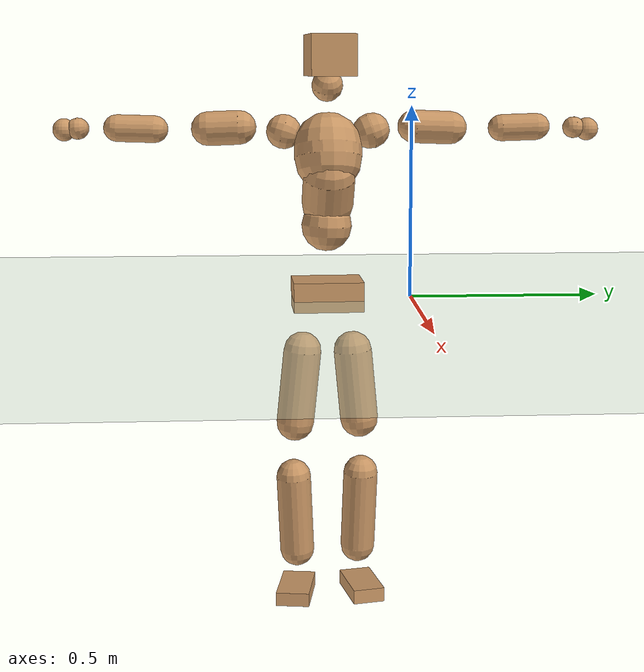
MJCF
<mujoco model="humanoid">
  <compiler coordinate="local" angle="radian"/>
  <default>
    <joint damping="0.0" armature="0.01" stiffness="0.0" limited="true"/>
    <geom conaffinity="1" condim="3" contype="7" margin="0.001" rgba="0.8 0.6 .4 1"/>
  </default>
  <asset>
    <texture type="skybox" builtin="gradient" rgb1=".4 .5 .6" rgb2="0 0 0" width="100" height="100"/>
    <texture builtin="flat" height="1278" mark="cross" markrgb="1 1 1" name="texgeom" random="0.01" rgb1="0.8 0.6 0.4" rgb2="0.8 0.6 0.4" type="cube" width="127"/>
    <texture builtin="checker" height="100" name="texplane" rgb1="0 0 0" rgb2="0.8 0.8 0.8" type="2d" width="100"/>
    <material name="MatPlane" reflectance="0.5" shininess="1" specular="1" texrepeat="60 60" texture="texplane"/>
    <material name="geom" texture="texgeom" texuniform="true"/>
  </asset>
  <worldbody>
    <light cutoff="100" diffuse="1 1 1" dir="-0 0 -1.3" directional="true" exponent="1" pos="0 0 1.3" specular=".1 .1 .1"/>
    <geom conaffinity="1" condim="3" name="floor" pos="0 0 0" rgba="0.8 0.9 0.8 1" size="100 100 .2" type="plane" material="MatPlane"/>
    <body name="Pelvis" pos="-0.0035 -0.2206 0.0196">
      <freejoint name="Pelvis"/>
      <geom type="box" contype="1" conaffinity="1" density="5359.374567" pos="-0.0055 -0.0002 -0.0120" size="0.0699 0.0923 0.0391" quat="0.9999 0.0000 0.0000 0.0166" name="Pelvis"/>
      <body name="L_Hip" pos="-0.0096 0.0608 -0.0865">
        <joint name="L_Hip_x" type="hinge" pos="0 0 0" axis="1 0 0" stiffness="1600" damping="160" armature="0.02" range="-180.0000 180.0000"/>
        <joint name="L_Hip_y" type="hinge" pos="0 0 0" axis="0 1 0" stiffness="1600" damping="160" armature="0.02" range="-180.0000 180.0000"/>
        <joint name="L_Hip_z" type="hinge" pos="0 0 0" axis="0 0 1" stiffness="1600" damping="160" armature="0.02" range="-180.0000 180.0000"/>
        <geom type="capsule" contype="1" conaffinity="1" density="2040.816327" size="0.0512" fromto="-0.0005 0.0075 -0.0809 -0.0018 0.0250 -0.2705" name="L_Hip"/>
        <body name="L_Knee" pos="-0.0024 0.0325 -0.3513">
          <joint name="L_Knee_x" type="hinge" pos="0 0 0" axis="1 0 0" stiffness="1600" damping="160" armature="0.02" range="-180.0000 180.0000"/>
          <joint name="L_Knee_y" type="hinge" pos="0 0 0" axis="0 1 0" stiffness="1600" damping="160" armature="0.02" range="-180.0000 180.0000"/>
          <joint name="L_Knee_z" type="hinge" pos="0 0 0" axis="0 0 1" stiffness="1600" damping="160" armature="0.02" range="-180.0000 180.0000"/>
          <geom type="capsule" contype="1" conaffinity="1" density="1234.567901" size="0.0466" fromto="-0.0075 -0.0024 -0.0762 -0.0288 -0.0092 -0.2941" name="L_Knee"/>
          <body name="L_Ankle" pos="-0.0363 -0.0116 -0.3703">
            <joint name="L_Ankle_x" type="hinge" pos="0 0 0" axis="1 0 0" stiffness="1600" damping="160" armature="0.02" range="-180.0000 180.0000"/>
            <joint name="L_Ankle_y" type="hinge" pos="0 0 0" axis="0 1 0" stiffness="1600" damping="160" armature="0.02" range="-180.0000 180.0000"/>
            <joint name="L_Ankle_z" type="hinge" pos="0 0 0" axis="0 0 1" stiffness="1600" damping="160" armature="0.02" range="-180.0000 180.0000"/>
            <geom type="box" contype="1" conaffinity="1" density="999.999947" pos="0.0552 0.0111 -0.0269" size="0.0771 0.043 0.0193" quat="0.9951 0.0000 0.0000 0.0992" name="L_Ankle"/>
            <body name="L_Toe" pos="0.1103 0.0222 -0.0537">
              <joint name="L_Toe_x" type="hinge" pos="0 0 0" axis="1 0 0" stiffness="1000" damping="100" armature="0.02" range="-180.0000 180.0000"/>
              <joint name="L_Toe_y" type="hinge" pos="0 0 0" axis="0 1 0" stiffness="1000" damping="100" armature="0.02" range="-180.0000 180.0000"/>
              <joint name="L_Toe_z" type="hinge" pos="0 0 0" axis="0 0 1" stiffness="1000" damping="100" armature="0.02" range="-180.0000 180.0000"/>
              <geom type="box" contype="1" conaffinity="1" density="8142141.868064" pos="0.0000 0.0000 0.0275" size="0.0009 0.0022 0.001" quat="0.9944 0.0000 0.0000 0.1060" name="L_Toe"/>
            </body>
          </body>
        </body>
      </body>
      <body name="R_Hip" pos="-0.0059 -0.0586 -0.0861">
        <joint name="R_Hip_x" type="hinge" pos="0 0 0" axis="1 0 0" stiffness="1600" damping="160" armature="0.02" range="-180.0000 180.0000"/>
        <joint name="R_Hip_y" type="hinge" pos="0 0 0" axis="0 1 0" stiffness="1600" damping="160" armature="0.02" range="-180.0000 180.0000"/>
        <joint name="R_Hip_z" type="hinge" pos="0 0 0" axis="0 0 1" stiffness="1600" damping="160" armature="0.02" range="-180.0000 180.0000"/>
        <geom type="capsule" contype="1" conaffinity="1" density="2040.816327" size="0.0505" fromto="-0.0010 -0.0084 -0.0800 -0.0037 -0.0292 -0.2791" name="R_Hip"/>
        <body name="R_Knee" pos="-0.0047 -0.0375 -0.3591">
          <joint name="R_Knee_x" type="hinge" pos="0 0 0" axis="1 0 0" stiffness="1600" damping="160" armature="0.02" range="-180.0000 180.0000"/>
          <joint name="R_Knee_y" type="hinge" pos="0 0 0" axis="0 1 0" stiffness="1600" damping="160" armature="0.02" range="-180.0000 180.0000"/>
          <joint name="R_Knee_z" type="hinge" pos="0 0 0" axis="0 0 1" stiffness="1600" damping="160" armature="0.02" range="-180.0000 180.0000"/>
          <geom type="capsule" contype="1" conaffinity="1" density="1234.567901" size="0.047" fromto="-0.0071 0.0030 -0.0766 -0.0271 0.0116 -0.2935" name="R_Knee"/>
          <body name="R_Ankle" pos="-0.0341 0.0146 -0.3702">
            <joint name="R_Ankle_x" type="hinge" pos="0 0 0" axis="1 0 0" stiffness="1600" damping="160" armature="0.02" range="-180.0000 180.0000"/>
            <joint name="R_Ankle_y" type="hinge" pos="0 0 0" axis="0 1 0" stiffness="1600" damping="160" armature="0.02" range="-180.0000 180.0000"/>
            <joint name="R_Ankle_z" type="hinge" pos="0 0 0" axis="0 0 1" stiffness="1600" damping="160" armature="0.02" range="-180.0000 180.0000"/>
            <geom type="box" contype="1" conaffinity="1" density="999.999945" pos="0.0567 -0.0083 -0.0220" size="0.0792 0.0448 0.0184" quat="0.9974 0.0000 0.0000 -0.0722" name="R_Ankle"/>
            <body name="R_Toe" pos="0.1135 -0.0165 -0.044">
              <joint name="R_Toe_x" type="hinge" pos="0 0 0" axis="1 0 0" stiffness="1000" damping="100" armature="0.02" range="-180.0000 180.0000"/>
              <joint name="R_Toe_y" type="hinge" pos="0 0 0" axis="0 1 0" stiffness="1000" damping="100" armature="0.02" range="-180.0000 180.0000"/>
              <joint name="R_Toe_z" type="hinge" pos="0 0 0" axis="0 0 1" stiffness="1000" damping="100" armature="0.02" range="-180.0000 180.0000"/>
              <geom type="box" contype="1" conaffinity="1" density="8272414.506785" pos="0.0000 0.0000 0.0251" size="0.0008 0.0022 0.0011" quat="0.9980 0.0000 0.0000 -0.0624" name="R_Toe"/>
            </body>
          </body>
        </body>
      </body>
      <body name="Torso" pos="-0.0179 -0.0033 0.1003">
        <joint name="Torso_x" type="hinge" pos="0 0 0" axis="1 0 0" stiffness="2000" damping="200" armature="0.02" range="-180.0000 180.0000"/>
        <joint name="Torso_y" type="hinge" pos="0 0 0" axis="0 1 0" stiffness="2000" damping="200" armature="0.02" range="-180.0000 180.0000"/>
        <joint name="Torso_z" type="hinge" pos="0 0 0" axis="0 0 1" stiffness="2000" damping="200" armature="0.02" range="-180.0000 180.0000"/>
        <geom type="capsule" contype="1" conaffinity="1" density="2040.816327" size="0.0664" fromto="0.0004 0.0028 0.0676 0.0004 0.0029 0.0696" name="Torso"/>
        <body name="Spine" pos="0.0008 0.0058 0.1372">
          <joint name="Spine_x" type="hinge" pos="0 0 0" axis="1 0 0" stiffness="2000" damping="200" armature="0.02" range="-180.0000 180.0000"/>
          <joint name="Spine_y" type="hinge" pos="0 0 0" axis="0 1 0" stiffness="2000" damping="200" armature="0.02" range="-180.0000 180.0000"/>
          <joint name="Spine_z" type="hinge" pos="0 0 0" axis="0 0 1" stiffness="2000" damping="200" armature="0.02" range="-180.0000 180.0000"/>
          <geom type="capsule" contype="1" conaffinity="1" density="2040.816327" size="0.0681" fromto="0.0293 0.0026 0.0614 -0.0045 -0.0004 -0.0094" name="Spine"/>
          <body name="Chest" pos="0.0249 0.0022 0.0521">
            <joint name="Chest_x" type="hinge" pos="0 0 0" axis="1 0 0" stiffness="2000" damping="200" armature="0.02" range="-180.0000 180.0000"/>
            <joint name="Chest_y" type="hinge" pos="0 0 0" axis="0 1 0" stiffness="2000" damping="200" armature="0.02" range="-180.0000 180.0000"/>
            <joint name="Chest_z" type="hinge" pos="0 0 0" axis="0 0 1" stiffness="2000" damping="200" armature="0.02" range="-180.0000 180.0000"/>
            <geom type="capsule" contype="1" conaffinity="1" density="2040.816327" size="0.0894" fromto="-0.0230 -0.0015 0.0864 -0.0152 -0.0010 0.0569" name="Chest"/>
            <body name="Neck" pos="-0.0394 -0.0052 0.2062">
              <joint name="Neck_x" type="hinge" pos="0 0 0" axis="1 0 0" stiffness="1000" damping="100" armature="0.02" range="-180.0000 180.0000"/>
              <joint name="Neck_y" type="hinge" pos="0 0 0" axis="0 1 0" stiffness="1000" damping="100" armature="0.02" range="-180.0000 180.0000"/>
              <joint name="Neck_z" type="hinge" pos="0 0 0" axis="0 0 1" stiffness="1000" damping="100" armature="0.02" range="-180.0000 180.0000"/>
              <geom type="capsule" contype="1" conaffinity="1" density="1000" size="0.0405" fromto="0.0280 0.0019 0.0365 0.0292 0.0020 0.0380" name="Neck"/>
              <body name="Head" pos="0.0571 0.0039 0.0745">
                <joint name="Head_x" type="hinge" pos="0 0 0" axis="1 0 0" stiffness="1000" damping="100" armature="0.02" range="-180.0000 180.0000"/>
                <joint name="Head_y" type="hinge" pos="0 0 0" axis="0 1 0" stiffness="1000" damping="100" armature="0.02" range="-180.0000 180.0000"/>
                <joint name="Head_z" type="hinge" pos="0 0 0" axis="0 0 1" stiffness="1000" damping="100" armature="0.02" range="-180.0000 180.0000"/>
                <geom type="box" contype="1" conaffinity="1" density="2249.999776" pos="0.0296 0.0029 0.0382" size="0.0746 0.0578 0.0518" quat="0.9988 0.0000 0.0000 0.0496" name="Head"/>
              </body>
            </body>
            <body name="L_Thorax" pos="-0.0358 0.0717 0.113">
              <joint name="L_Thorax_x" type="hinge" pos="0 0 0" axis="1 0 0" stiffness="1000" damping="100" armature="0.02" range="-180.0000 180.0000"/>
              <joint name="L_Thorax_y" type="hinge" pos="0 0 0" axis="0 1 0" stiffness="1000" damping="100" armature="0.02" range="-180.0000 180.0000"/>
              <joint name="L_Thorax_z" type="hinge" pos="0 0 0" axis="0 0 1" stiffness="1000" damping="100" armature="0.02" range="-180.0000 180.0000"/>
              <geom type="capsule" contype="1" conaffinity="1" density="1000" size="0.0461" fromto="-0.0037 0.0437 0.0143 -0.0033 0.0388 0.0127" name="L_Thorax"/>
              <body name="L_Shoulder" pos="-0.0069 0.0825 0.027">
                <joint name="L_Shoulder_x" type="hinge" pos="0 0 0" axis="1 0 0" stiffness="1000" damping="100" armature="0.02" range="-720.0000 720.0000"/>
                <joint name="L_Shoulder_y" type="hinge" pos="0 0 0" axis="0 1 0" stiffness="1000" damping="100" armature="0.02" range="-720.0000 720.0000"/>
                <joint name="L_Shoulder_z" type="hinge" pos="0 0 0" axis="0 0 1" stiffness="1000" damping="100" armature="0.02" range="-720.0000 720.0000"/>
                <geom type="capsule" contype="1" conaffinity="1" density="1000" size="0.0432" fromto="-0.0077 0.0727 -0.0031 -0.0180 0.1704 -0.0072" name="L_Shoulder"/>
                <body name="L_Elbow" pos="-0.0257 0.2431 -0.0102">
                  <joint name="L_Elbow_x" type="hinge" pos="0 0 0" axis="1 0 0" stiffness="1000" damping="100" armature="0.02" range="-720.0000 720.0000"/>
                  <joint name="L_Elbow_y" type="hinge" pos="0 0 0" axis="0 1 0" stiffness="1000" damping="100" armature="0.02" range="-720.0000 720.0000"/>
                  <joint name="L_Elbow_z" type="hinge" pos="0 0 0" axis="0 0 1" stiffness="1000" damping="100" armature="0.02" range="-720.0000 720.0000"/>
                  <geom type="capsule" contype="1" conaffinity="1" density="1000" size="0.0351" fromto="-0.0007 0.0650 0.0020 -0.0016 0.1594 0.0050" name="L_Elbow"/>
                  <body name="L_Wrist" pos="-0.0023 0.2244 0.007">
                    <joint name="L_Wrist_x" type="hinge" pos="0 0 0" axis="1 0 0" stiffness="600" damping="60" armature="0.02" range="-180.0000 180.0000"/>
                    <joint name="L_Wrist_y" type="hinge" pos="0 0 0" axis="0 1 0" stiffness="600" damping="60" armature="0.02" range="-180.0000 180.0000"/>
                    <joint name="L_Wrist_z" type="hinge" pos="0 0 0" axis="0 0 1" stiffness="600" damping="60" armature="0.02" range="-180.0000 180.0000"/>
                    <geom type="capsule" contype="1" conaffinity="1" density="1000" size="0.0281" fromto="-0.0060 0.0363 -0.0044 -0.0064 0.0383 -0.0046" name="L_Wrist"/>
                    <body name="L_Hand" pos="-0.0124 0.0746 -0.009">
                      <joint name="L_Hand_x" type="hinge" pos="0 0 0" axis="1 0 0" stiffness="600" damping="60" armature="0.02" range="-180.0000 180.0000"/>
                      <joint name="L_Hand_y" type="hinge" pos="0 0 0" axis="0 1 0" stiffness="600" damping="60" armature="0.02" range="-180.0000 180.0000"/>
                      <joint name="L_Hand_z" type="hinge" pos="0 0 0" axis="0 0 1" stiffness="600" damping="60" armature="0.02" range="-180.0000 180.0000"/>
                      <geom type="sphere" contype="1" conaffinity="1" density="1000" size="0.0302" pos="0.0000 0.0000 0.0000" name="L_Hand"/>
                    </body>
                  </body>
                </body>
              </body>
            </body>
            <body name="R_Thorax" pos="-0.0394 -0.0741 0.1108">
              <joint name="R_Thorax_x" type="hinge" pos="0 0 0" axis="1 0 0" stiffness="1000" damping="100" armature="0.02" range="-180.0000 180.0000"/>
              <joint name="R_Thorax_y" type="hinge" pos="0 0 0" axis="0 1 0" stiffness="1000" damping="100" armature="0.02" range="-180.0000 180.0000"/>
              <joint name="R_Thorax_z" type="hinge" pos="0 0 0" axis="0 0 1" stiffness="1000" damping="100" armature="0.02" range="-180.0000 180.0000"/>
              <geom type="capsule" contype="1" conaffinity="1" density="1000" size="0.0449" fromto="-0.0047 -0.0409 0.0135 -0.0049 -0.0428 0.0141" name="R_Thorax"/>
              <body name="R_Shoulder" pos="-0.0096 -0.0837 0.0276">
                <joint name="R_Shoulder_x" type="hinge" pos="0 0 0" axis="1 0 0" stiffness="1000" damping="100" armature="0.02" range="-720.0000 720.0000"/>
                <joint name="R_Shoulder_y" type="hinge" pos="0 0 0" axis="0 1 0" stiffness="1000" damping="100" armature="0.02" range="-720.0000 720.0000"/>
                <joint name="R_Shoulder_z" type="hinge" pos="0 0 0" axis="0 0 1" stiffness="1000" damping="100" armature="0.02" range="-720.0000 720.0000"/>
                <geom type="capsule" contype="1" conaffinity="1" density="1000" size="0.0444" fromto="-0.0058 -0.0741 -0.0032 -0.0121 -0.1557 -0.0066" name="R_Shoulder"/>
                <body name="R_Elbow" pos="-0.0178 -0.2299 -0.0098">
                  <joint name="R_Elbow_x" type="hinge" pos="0 0 0" axis="1 0 0" stiffness="1000" damping="100" armature="0.02" range="-720.0000 720.0000"/>
                  <joint name="R_Elbow_y" type="hinge" pos="0 0 0" axis="0 1 0" stiffness="1000" damping="100" armature="0.02" range="-720.0000 720.0000"/>
                  <joint name="R_Elbow_z" type="hinge" pos="0 0 0" axis="0 0 1" stiffness="1000" damping="100" armature="0.02" range="-720.0000 720.0000"/>
                  <geom type="capsule" contype="1" conaffinity="1" density="1000" size="0.0353" fromto="-0.0017 -0.0653 0.0019 -0.0042 -0.1636 0.0048" name="R_Elbow"/>
                  <body name="R_Wrist" pos="-0.0059 -0.2288 0.0067">
                    <joint name="R_Wrist_x" type="hinge" pos="0 0 0" axis="1 0 0" stiffness="600" damping="60" armature="0.02" range="-180.0000 180.0000"/>
                    <joint name="R_Wrist_y" type="hinge" pos="0 0 0" axis="0 1 0" stiffness="600" damping="60" armature="0.02" range="-180.0000 180.0000"/>
                    <joint name="R_Wrist_z" type="hinge" pos="0 0 0" axis="0 0 1" stiffness="600" damping="60" armature="0.02" range="-180.0000 180.0000"/>
                    <geom type="capsule" contype="1" conaffinity="1" density="1000" size="0.0283" fromto="-0.0044 -0.0357 -0.0032 -0.0047 -0.0377 -0.0034" name="R_Wrist"/>
                    <body name="R_Hand" pos="-0.0091 -0.0734 -0.0066">
                      <joint name="R_Hand_x" type="hinge" pos="0 0 0" axis="1 0 0" stiffness="600" damping="60" armature="0.02" range="-180.0000 180.0000"/>
                      <joint name="R_Hand_y" type="hinge" pos="0 0 0" axis="0 1 0" stiffness="600" damping="60" armature="0.02" range="-180.0000 180.0000"/>
                      <joint name="R_Hand_z" type="hinge" pos="0 0 0" axis="0 0 1" stiffness="600" damping="60" armature="0.02" range="-180.0000 180.0000"/>
                      <geom type="sphere" contype="1" conaffinity="1" density="1000" size="0.0296" pos="0.0000 0.0000 0.0000" name="R_Hand"/>
                    </body>
                  </body>
                </body>
              </body>
            </body>
          </body>
        </body>
      </body>
    </body>
  </worldbody>
  <actuator>
    <motor name="L_Hip_x" joint="L_Hip_x" gear="500"/>
    <motor name="L_Hip_y" joint="L_Hip_y" gear="500"/>
    <motor name="L_Hip_z" joint="L_Hip_z" gear="500"/>
    <motor name="L_Knee_x" joint="L_Knee_x" gear="500"/>
    <motor name="L_Knee_y" joint="L_Knee_y" gear="500"/>
    <motor name="L_Knee_z" joint="L_Knee_z" gear="500"/>
    <motor name="L_Ankle_x" joint="L_Ankle_x" gear="500"/>
    <motor name="L_Ankle_y" joint="L_Ankle_y" gear="500"/>
    <motor name="L_Ankle_z" joint="L_Ankle_z" gear="500"/>
    <motor name="L_Toe_x" joint="L_Toe_x" gear="500"/>
    <motor name="L_Toe_y" joint="L_Toe_y" gear="500"/>
    <motor name="L_Toe_z" joint="L_Toe_z" gear="500"/>
    <motor name="R_Hip_x" joint="R_Hip_x" gear="500"/>
    <motor name="R_Hip_y" joint="R_Hip_y" gear="500"/>
    <motor name="R_Hip_z" joint="R_Hip_z" gear="500"/>
    <motor name="R_Knee_x" joint="R_Knee_x" gear="500"/>
    <motor name="R_Knee_y" joint="R_Knee_y" gear="500"/>
    <motor name="R_Knee_z" joint="R_Knee_z" gear="500"/>
    <motor name="R_Ankle_x" joint="R_Ankle_x" gear="500"/>
    <motor name="R_Ankle_y" joint="R_Ankle_y" gear="500"/>
    <motor name="R_Ankle_z" joint="R_Ankle_z" gear="500"/>
    <motor name="R_Toe_x" joint="R_Toe_x" gear="500"/>
    <motor name="R_Toe_y" joint="R_Toe_y" gear="500"/>
    <motor name="R_Toe_z" joint="R_Toe_z" gear="500"/>
    <motor name="Torso_x" joint="Torso_x" gear="500"/>
    <motor name="Torso_y" joint="Torso_y" gear="500"/>
    <motor name="Torso_z" joint="Torso_z" gear="500"/>
    <motor name="Spine_x" joint="Spine_x" gear="500"/>
    <motor name="Spine_y" joint="Spine_y" gear="500"/>
    <motor name="Spine_z" joint="Spine_z" gear="500"/>
    <motor name="Chest_x" joint="Chest_x" gear="500"/>
    <motor name="Chest_y" joint="Chest_y" gear="500"/>
    <motor name="Chest_z" joint="Chest_z" gear="500"/>
    <motor name="Neck_x" joint="Neck_x" gear="500"/>
    <motor name="Neck_y" joint="Neck_y" gear="500"/>
    <motor name="Neck_z" joint="Neck_z" gear="500"/>
    <motor name="Head_x" joint="Head_x" gear="500"/>
    <motor name="Head_y" joint="Head_y" gear="500"/>
    <motor name="Head_z" joint="Head_z" gear="500"/>
    <motor name="L_Thorax_x" joint="L_Thorax_x" gear="500"/>
    <motor name="L_Thorax_y" joint="L_Thorax_y" gear="500"/>
    <motor name="L_Thorax_z" joint="L_Thorax_z" gear="500"/>
    <motor name="L_Shoulder_x" joint="L_Shoulder_x" gear="500"/>
    <motor name="L_Shoulder_y" joint="L_Shoulder_y" gear="500"/>
    <motor name="L_Shoulder_z" joint="L_Shoulder_z" gear="500"/>
    <motor name="L_Elbow_x" joint="L_Elbow_x" gear="500"/>
    <motor name="L_Elbow_y" joint="L_Elbow_y" gear="500"/>
    <motor name="L_Elbow_z" joint="L_Elbow_z" gear="500"/>
    <motor name="L_Wrist_x" joint="L_Wrist_x" gear="500"/>
    <motor name="L_Wrist_y" joint="L_Wrist_y" gear="500"/>
    <motor name="L_Wrist_z" joint="L_Wrist_z" gear="500"/>
    <motor name="L_Hand_x" joint="L_Hand_x" gear="500"/>
    <motor name="L_Hand_y" joint="L_Hand_y" gear="500"/>
    <motor name="L_Hand_z" joint="L_Hand_z" gear="500"/>
    <motor name="R_Thorax_x" joint="R_Thorax_x" gear="500"/>
    <motor name="R_Thorax_y" joint="R_Thorax_y" gear="500"/>
    <motor name="R_Thorax_z" joint="R_Thorax_z" gear="500"/>
    <motor name="R_Shoulder_x" joint="R_Shoulder_x" gear="500"/>
    <motor name="R_Shoulder_y" joint="R_Shoulder_y" gear="500"/>
    <motor name="R_Shoulder_z" joint="R_Shoulder_z" gear="500"/>
    <motor name="R_Elbow_x" joint="R_Elbow_x" gear="500"/>
    <motor name="R_Elbow_y" joint="R_Elbow_y" gear="500"/>
    <motor name="R_Elbow_z" joint="R_Elbow_z" gear="500"/>
    <motor name="R_Wrist_x" joint="R_Wrist_x" gear="500"/>
    <motor name="R_Wrist_y" joint="R_Wrist_y" gear="500"/>
    <motor name="R_Wrist_z" joint="R_Wrist_z" gear="500"/>
    <motor name="R_Hand_x" joint="R_Hand_x" gear="500"/>
    <motor name="R_Hand_y" joint="R_Hand_y" gear="500"/>
    <motor name="R_Hand_z" joint="R_Hand_z" gear="500"/>
  </actuator>
  <contact>
    <exclude body1="Torso" body2="Chest"/>
    <exclude body1="Head" body2="Chest"/>
    <exclude body1="R_Knee" body2="R_Toe"/>
    <exclude body1="R_Knee" body2="L_Ankle"/>
    <exclude body1="R_Knee" body2="L_Toe"/>
    <exclude body1="L_Knee" body2="L_Toe"/>
    <exclude body1="L_Knee" body2="R_Ankle"/>
    <exclude body1="L_Knee" body2="R_Toe"/>
    <exclude body1="L_Shoulder" body2="Chest"/>
    <exclude body1="R_Shoulder" body2="Chest"/>
  </contact>
  <sensor/>
  <size njmax="700" nconmax="700"/>
</mujoco>
